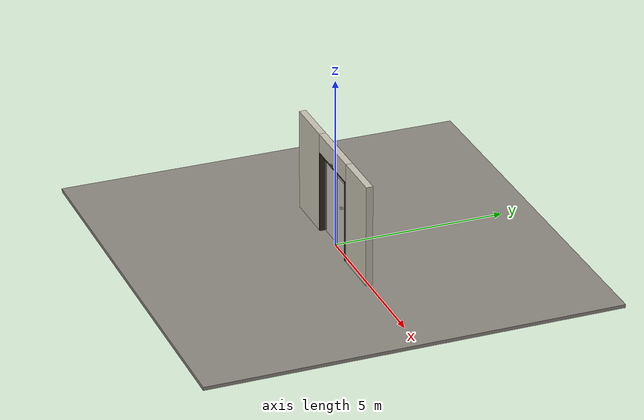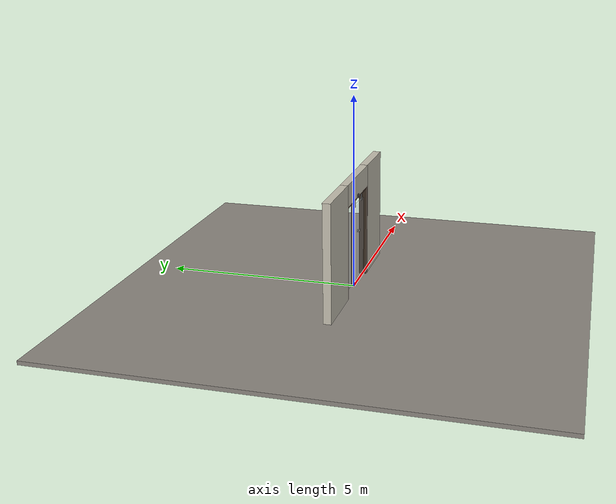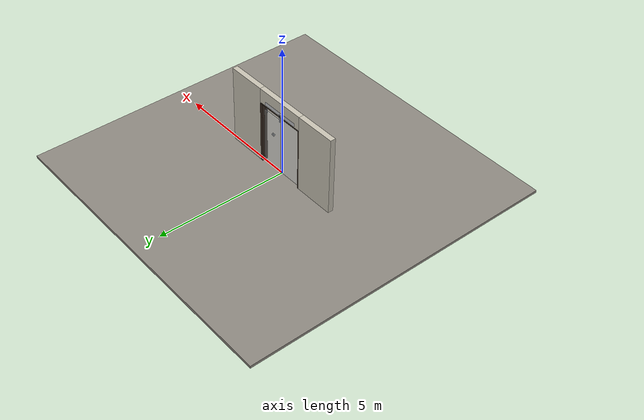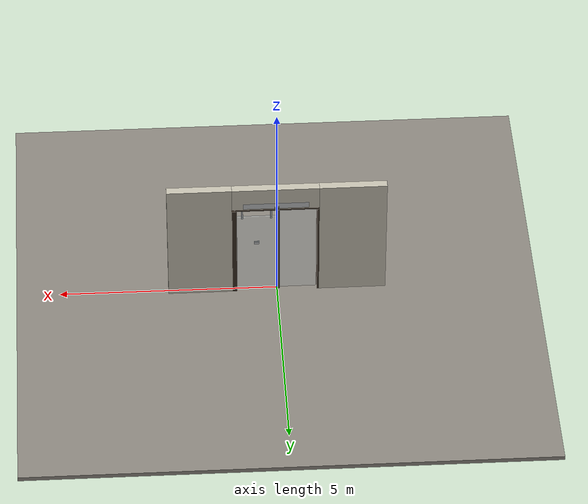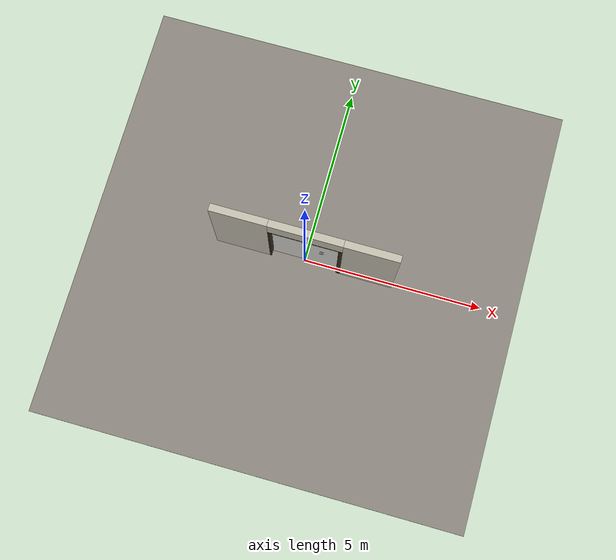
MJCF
<?xml version="1.0" ?>
<mujoco model="db0863_automatic_sliding_full">
  <compiler angle="radian" meshdir="../../hardware" texturedir="../../textures" autolimits="true" inertiafromgeom="false"/>
  <option timestep="0.002" integrator="implicitfast" cone="elliptic" impratio="10" noslip_iterations="3">
    <flag multiccd="enable"/>
  </option>
  <size memory="16M"/>
  <default>
    <geom condim="4" solref="0.005 1" solimp="0.95 0.99 0.001"/>
    <joint solreflimit="0.005 1" solimplimit="0.95 0.99 0.001"/>
    <tendon solreflimit="0.005 1"/>
    <equality solref="0.002 1"/>
  </default>
  <visual>
    <headlight ambient="0.4 0.4 0.4" diffuse="0.7 0.7 0.7" specular="0.2 0.2 0.2"/>
    <quality shadowsize="4096"/>
    <map znear="0.01" zfar="60"/>
  </visual>
  <asset>
    <material name="mat_floor" rgba="0.55 0.53 0.5 1" specular="0.2" shininess="0.15" reflectance="0"/>
    <material name="mat_wall" rgba="0.78 0.76 0.7 1" specular="0.2" shininess="0.1" reflectance="0"/>
    <material name="mat_frame" rgba="0.22 0.17 0.13 1" specular="0.8" shininess="0.6" reflectance="0.4"/>
    <material name="mat_track" rgba="0.8 0.81 0.83 1" specular="0.8" shininess="0.6" reflectance="0.4"/>
    <material name="mat_fixed_glass" rgba="0.85 0.92 0.95 0.25" specular="0.2" shininess="0.95" reflectance="0.1"/>
    <material name="mat_leaf" rgba="0.85 0.92 0.95 0.25" specular="0.2" shininess="0.95" reflectance="0.1"/>
    <material name="mat_glass_leaf" rgba="0.85 0.92 0.95 0.25" specular="0.2" shininess="0.95" reflectance="0.1"/>
    <material name="mat_patch" rgba="0.75 0.76 0.77 1" specular="0.8" shininess="0.65" reflectance="0.4"/>
    <material name="mat_roller" rgba="0.65 0.66 0.68 1" specular="0.74" shininess="0.5" reflectance="0.36"/>
    <material name="mat_hook" rgba="0.75 0.76 0.77 1" specular="0.8" shininess="0.65" reflectance="0.4"/>
    <material name="mat_sign" rgba="0.75 0.76 0.77 1" specular="0.8" shininess="0.65" reflectance="0.4"/>
    <material name="mat_wallreader" rgba="0.05 0.05 0.05 1" specular="0.38" shininess="0.3" reflectance="0.12"/>
    <texture name="skybox" type="skybox" builtin="gradient" rgb1="0.6 0.7 0.85" rgb2="0.9 0.92 0.95" width="256" height="256"/>
  </asset>
  <worldbody>
    <light name="sun" pos="1.5 -2.5 4" dir="-0.3 0.5 -0.8" directional="true" diffuse="0.8 0.8 0.8" specular="0.3 0.3 0.3" castshadow="true"/>
    <light name="fill" pos="-1.5 2.5 3" dir="0.3 -0.5 -0.7" directional="true" diffuse="0.35 0.35 0.4" castshadow="false"/>
    <camera name="robot_view" pos="0 -2.86 1.9928" xyaxes="1 0 0 0 0.26963 0.962964" fovy="52"/>
    <camera name="far_view" pos="0 2.86 1.9928" xyaxes="-1 0 0 0 -0.26963 0.962964" fovy="52"/>
    <camera name="iso" pos="2.1736 -2.4024 2.4504" xyaxes="0.741536 0.670913 0 -0.242917 0.268487 0.932151" fovy="46"/>
    <camera name="detail_handle" pos="0.48 -0.8 1.28" xyaxes="0.97561 0.219512 0 -0.070934 0.315262 0.94635" fovy="38"/>
    <geom name="floor" type="box" size="6 6 0.05" pos="0 0 -0.05" material="mat_floor" group="0" contype="1" conaffinity="1" friction="0.8 0.005 0.0001" density="2400"/>
    <geom name="wall_left" type="box" size="0.7675 0.1 1.492" pos="-1.7325 0 1.492" material="mat_wall" group="0" contype="1" conaffinity="1" friction="0.6 0.005 0.0001" density="800"/>
    <geom name="wall_right" type="box" size="0.7375 0.1 1.492" pos="1.7625 0 1.492" material="mat_wall" group="0" contype="1" conaffinity="1" friction="0.6 0.005 0.0001" density="800"/>
    <geom name="wall_header" type="box" size="0.995 0.1 0.2775" pos="0.03 0 2.7065" material="mat_wall" group="0" contype="1" conaffinity="1" friction="0.6 0.005 0.0001" density="800"/>
    <geom name="jamb_l" type="box" size="0.0225 0.1 1.192" pos="-0.9425 0 1.192" material="mat_frame" group="0" contype="1" conaffinity="1" friction="0.6 0.005 0.0001" density="300"/>
    <geom name="jamb_head" type="box" size="0.965 0.1 0.0225" pos="0 0 2.4065" material="mat_frame" group="0" contype="1" conaffinity="1" friction="0.6 0.005 0.0001" density="300"/>
    <geom name="fixed_panel_glass" type="box" size="0.44 0.003 1.142" pos="-0.46 0.04 1.192" material="mat_fixed_glass" group="0" contype="1" conaffinity="1" friction="0.6 0.005 0.0001" density="2500"/>
    <geom name="fixed_panel_stile" type="box" size="0.03 0.012 1.192" pos="-0.03 0.0475 1.192" material="mat_frame" group="0" contype="1" conaffinity="1" friction="0.6 0.005 0.0001" density="1400"/>
    <geom name="track_header" type="box" size="0.94 0.09 0.09" pos="0.02 0 2.519" material="mat_track" group="0" contype="1" conaffinity="1" friction="0.6 0.005 0.0001" density="2700"/>
    <geom name="jamb_latch_0" type="box" size="0.0525 0.1 1.192" pos="0.9725 0 1.192" material="mat_frame" group="0" contype="1" conaffinity="1" friction="0.6 0.005 0.0001" density="300"/>
    <geom name="wave_sensor_n" type="box" size="0.05 0.012 0.05" pos="0 -0.112 2.454" material="mat_wallreader" group="0" contype="1" conaffinity="1" friction="0.6 0.005 0.0001" density="1000"/>
    <geom name="wave_sensor_n_pad" type="box" size="0.04 0.0055 0.04" pos="0 -0.095 2.454" material="mat_wallreader" group="1" contype="0" conaffinity="0" density="7850"/>
    <geom name="wave_sensor_p" type="box" size="0.05 0.012 0.05" pos="0 0.112 2.454" material="mat_wallreader" group="0" contype="1" conaffinity="1" friction="0.6 0.005 0.0001" density="1000"/>
    <geom name="wave_sensor_p_pad" type="box" size="0.04 0.0055 0.04" pos="0 0.095 2.454" material="mat_wallreader" group="1" contype="0" conaffinity="0" density="7850"/>
    <geom name="track_header_bracket" type="box" size="0.752 0.0055 0.072" pos="0.02 0.095 2.519" material="mat_hook" group="1" contype="0" conaffinity="0" density="7850"/>
    <site name="approach_point" pos="0 -1.5 0" quat="1 0 0 0" size="0.05" rgba="0.2 0.9 0.2 0.5" group="4"/>
    <site name="goal_point" pos="0 1.5 0" quat="1 0 0 0" size="0.05" rgba="0.2 0.9 0.2 0.5" group="4"/>
    <site name="door_plane_center" pos="0 0 1.192" quat="1 0 0 0" size="0.02" rgba="0.2 0.9 0.2 0.5" group="4"/>
    <body name="leaf" pos="0.46 0 0">
      <inertial pos="0 0 1.130644" mass="66.3107" quat="0.5 -0.5 -0.5 -0.5" diaginertia="4.583817675 27.704467909 32.266568883"/>
      <joint name="leaf_slide" type="slide" axis="-1 0 0" limited="true" range="0 0.88" damping="5.315535" frictionloss="50.722294" armature="0.5"/>
      <geom name="leaf_glass" type="box" size="0.45 0.0225 1.067" pos="0 0 1.079" material="mat_glass_leaf" group="0" contype="1" conaffinity="1" friction="0.4 0.005 0.0001" density="1"/>
      <geom name="leaf_carrier_0" type="box" size="0.02 0.005 0.147" pos="-0.33 0 2.233" material="mat_roller" group="1" contype="0" conaffinity="0" density="7850"/>
      <geom name="leaf_carrier_wheel_0" type="cylinder" size="0.014 0.006" pos="-0.33 0 2.37" quat="0.707107 -0.707107 0 0" material="mat_roller" group="1" contype="0" conaffinity="0" density="7850"/>
      <geom name="leaf_carrier_1" type="box" size="0.02 0.005 0.147" pos="0.33 0 2.233" material="mat_roller" group="1" contype="0" conaffinity="0" density="7850"/>
      <geom name="leaf_carrier_wheel_1" type="cylinder" size="0.014 0.006" pos="0.33 0 2.37" quat="0.707107 -0.707107 0 0" material="mat_roller" group="1" contype="0" conaffinity="0" density="7850"/>
      <geom name="sign_push" type="box" size="0.06 0.001 0.03" pos="0 -0.0235 1.362" material="mat_sign" group="2" contype="0" conaffinity="0" density="7900"/>
      <geom name="sign_pull" type="box" size="0.06 0.001 0.03" pos="0 0.0235 1.362" material="mat_sign" group="2" contype="0" conaffinity="0" density="7900"/>
      <site name="leaf_edge_mid" pos="0.45 0 1.079" quat="1 0 0 0" size="0.02" rgba="0.2 0.9 0.2 0.5" group="4"/>
    </body>
  </worldbody>
  <actuator>
    <position name="leaf_drive" joint="leaf_slide" kp="400" kv="60" forcerange="-150 150" ctrlrange="0 0.88"/>
  </actuator>
  <sensor>
    <jointpos name="leaf_slide_pos" joint="leaf_slide"/>
    <jointvel name="leaf_slide_vel" joint="leaf_slide"/>
  </sensor>
</mujoco>
